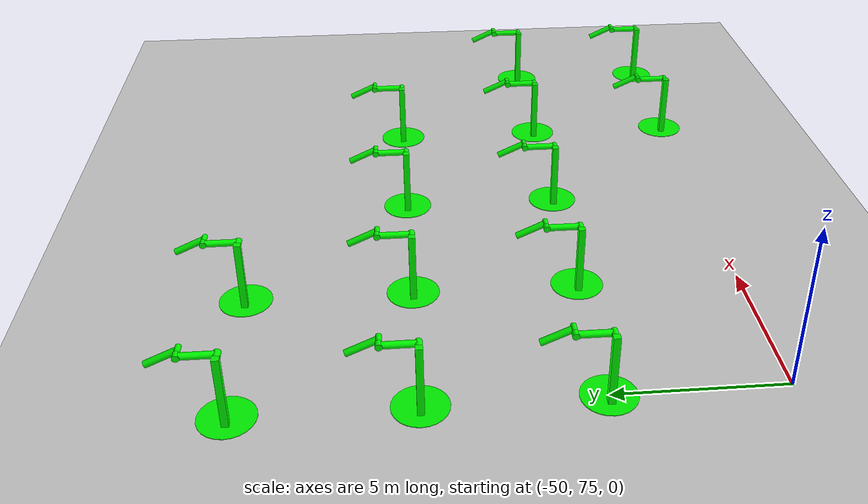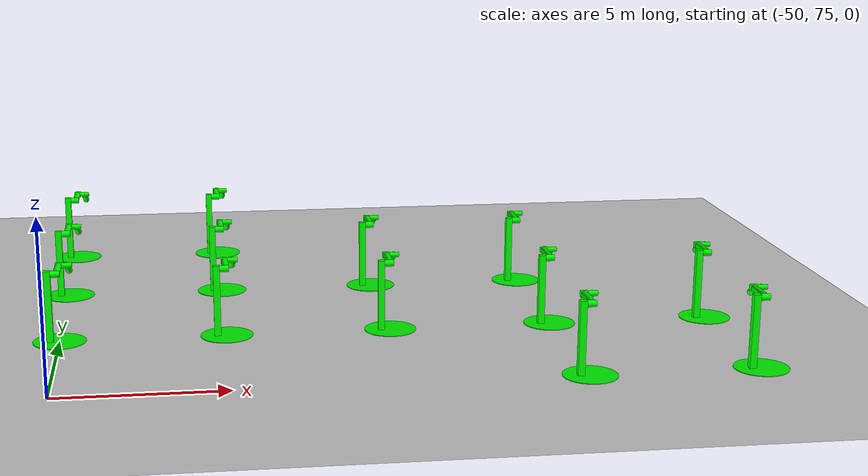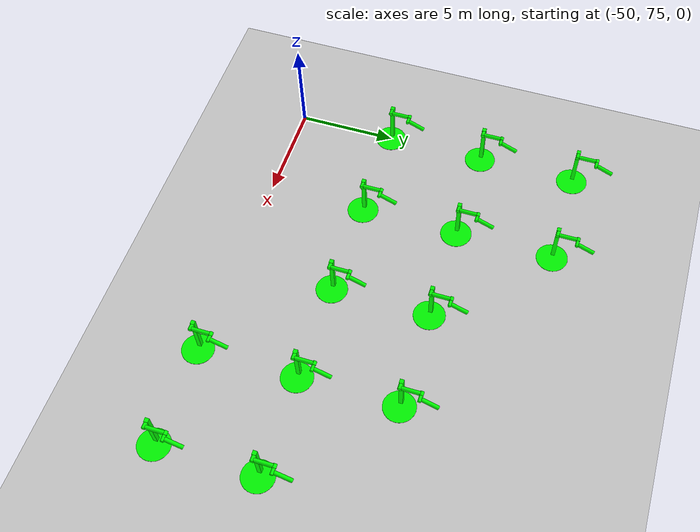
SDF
<sdf version="1.6">
 <world name="double_pendulums">
  <model name="ground_plane">
   <static>true</static>
   <link name="link">
    <collision name="collision">
     <geometry><plane><normal>0 0 1</normal><size>100 100</size></plane></geometry>
    </collision>
    <visual name="visual">
     <geometry><plane><normal>0 0 1</normal><size>100 100</size></plane></geometry>
     <material>
      <ambient>0.8 0.8 0.8 1</ambient>
      <diffuse>0.8 0.8 0.8 1</diffuse>
      <specular>0.8 0.8 0.8 1</specular>
     </material>
    </visual>
   </link>
  </model>
  <model name="dbl_pendulum_378">
   <pose>-35 75 0 0 0 0</pose>
   <link name="base">
    <inertial><mass>100</mass></inertial>
    <visual name="vis_plate_on_ground">
     <pose>0 0 0.01 0 0 0</pose>
     <geometry><cylinder><radius>0.8</radius><length>0.02</length></cylinder></geometry>
     <material><ambient>0 1 0 1</ambient><diffuse>0 1 0 1</diffuse><specular>0 1 0 1</specular></material>
    </visual>
    <visual name="vis_pole">
     <pose>-0.275 0 1.1 0 0 0</pose>
     <geometry><box><size>0.2 0.2 2.2</size></box></geometry>
     <material><ambient>0 1 0 1</ambient><diffuse>0 1 0 1</diffuse><specular>0 1 0 1</specular></material>
    </visual>
    <collision name="col_plate_on_ground">
     <pose>0 0 0.01 0 0 0</pose>
     <geometry><cylinder><radius>0.8</radius><length>0.02</length></cylinder></geometry>
    </collision>
    <collision name="col_pole">
     <pose>-0.275 0 1.1 0 0 0</pose>
     <geometry><box><size>0.2 0.2 2.2</size></box></geometry>
    </collision>
   </link>
   <link name="upper_link">
    <pose>0 0 2.1 -1.5708 0 0</pose>
    <inertial><pose>0 0 0.5 0 0 0</pose></inertial>
    <visual name="vis_upper_joint">
     <pose>-0.05 0 0 0 1.5708 0</pose>
     <geometry><cylinder><radius>0.1</radius><length>0.3</length></cylinder></geometry>
     <material><ambient>0 1 0 1</ambient><diffuse>0 1 0 1</diffuse><specular>0 1 0 1</specular></material>
    </visual>
    <visual name="vis_lower_joint">
     <pose>0 0 1.0 0 1.5708 0</pose>
     <geometry><cylinder><radius>0.1</radius><length>0.2</length></cylinder></geometry>
     <material><ambient>0 1 0 1</ambient><diffuse>0 1 0 1</diffuse><specular>0 1 0 1</specular></material>
    </visual>
    <visual name="vis_cylinder">
     <pose>0 0 0.5 0 0 0</pose>
     <geometry><cylinder><radius>0.1</radius><length>0.9</length></cylinder></geometry>
     <material><ambient>0 1 0 1</ambient><diffuse>0 1 0 1</diffuse><specular>0 1 0 1</specular></material>
    </visual>
    <collision name="col_upper_joint">
     <pose>-0.05 0 0 0 1.5708 0</pose>
     <geometry><cylinder><radius>0.1</radius><length>0.3</length></cylinder></geometry>
    </collision>
    <collision name="col_lower_joint">
     <pose>0 0 1.0 0 1.5708 0</pose>
     <geometry><cylinder><radius>0.1</radius><length>0.2</length></cylinder></geometry>
    </collision>
    <collision name="col_cylinder">
     <pose>0 0 0.5 0 0 0</pose>
     <geometry><cylinder><radius>0.1</radius><length>0.9</length></cylinder></geometry>
    </collision>
   </link>
   <link name="lower_link">
    <pose>0.25 1.0 2.1 -2 0 0</pose>
    <inertial><pose>0 0 0.5 0 0 0</pose></inertial>
    <visual name="vis_lower_joint">
     <pose>0 0 0 0 1.5708 0</pose>
     <geometry><cylinder><radius>0.08</radius><length>0.3</length></cylinder></geometry>
     <material><ambient>0 1 0 1</ambient><diffuse>0 1 0 1</diffuse><specular>0 1 0 1</specular></material>
    </visual>
    <visual name="vis_cylinder">
     <pose>0 0 0.5 0 0 0</pose>
     <geometry><cylinder><radius>0.1</radius><length>0.9</length></cylinder></geometry>
     <material><ambient>0 1 0 1</ambient><diffuse>0 1 0 1</diffuse><specular>0 1 0 1</specular></material>
    </visual>
    <collision name="col_lower_joint">
     <pose>0 0 0 0 1.5708 0</pose>
     <geometry><cylinder><radius>0.08</radius><length>0.3</length></cylinder></geometry>
    </collision>
    <collision name="col_cylinder">
     <pose>0 0 0.5 0 0 0</pose>
     <geometry><cylinder><radius>0.1</radius><length>0.9</length></cylinder></geometry>
    </collision>
   </link>
   <joint name="upper_joint" type="revolute">
    <parent>base</parent>
    <child>upper_link</child>
    <axis><xyz>1.0 0 0</xyz></axis>
   </joint>
   <joint name="lower_joint" type="revolute">
    <parent>upper_link</parent>
    <child>lower_link</child>
    <axis><xyz>1.0 0 0</xyz></axis>
   </joint>
  </model>
  <model name="dbl_pendulum_379">
   <pose>-30 75 0 0 0 0</pose>
   <link name="base">
    <inertial><mass>100</mass></inertial>
    <visual name="vis_plate_on_ground">
     <pose>0 0 0.01 0 0 0</pose>
     <geometry><cylinder><radius>0.8</radius><length>0.02</length></cylinder></geometry>
     <material><ambient>0 1 0 1</ambient><diffuse>0 1 0 1</diffuse><specular>0 1 0 1</specular></material>
    </visual>
    <visual name="vis_pole">
     <pose>-0.275 0 1.1 0 0 0</pose>
     <geometry><box><size>0.2 0.2 2.2</size></box></geometry>
     <material><ambient>0 1 0 1</ambient><diffuse>0 1 0 1</diffuse><specular>0 1 0 1</specular></material>
    </visual>
    <collision name="col_plate_on_ground">
     <pose>0 0 0.01 0 0 0</pose>
     <geometry><cylinder><radius>0.8</radius><length>0.02</length></cylinder></geometry>
    </collision>
    <collision name="col_pole">
     <pose>-0.275 0 1.1 0 0 0</pose>
     <geometry><box><size>0.2 0.2 2.2</size></box></geometry>
    </collision>
   </link>
   <link name="upper_link">
    <pose>0 0 2.1 -1.5708 0 0</pose>
    <inertial><pose>0 0 0.5 0 0 0</pose></inertial>
    <visual name="vis_upper_joint">
     <pose>-0.05 0 0 0 1.5708 0</pose>
     <geometry><cylinder><radius>0.1</radius><length>0.3</length></cylinder></geometry>
     <material><ambient>0 1 0 1</ambient><diffuse>0 1 0 1</diffuse><specular>0 1 0 1</specular></material>
    </visual>
    <visual name="vis_lower_joint">
     <pose>0 0 1.0 0 1.5708 0</pose>
     <geometry><cylinder><radius>0.1</radius><length>0.2</length></cylinder></geometry>
     <material><ambient>0 1 0 1</ambient><diffuse>0 1 0 1</diffuse><specular>0 1 0 1</specular></material>
    </visual>
    <visual name="vis_cylinder">
     <pose>0 0 0.5 0 0 0</pose>
     <geometry><cylinder><radius>0.1</radius><length>0.9</length></cylinder></geometry>
     <material><ambient>0 1 0 1</ambient><diffuse>0 1 0 1</diffuse><specular>0 1 0 1</specular></material>
    </visual>
    <collision name="col_upper_joint">
     <pose>-0.05 0 0 0 1.5708 0</pose>
     <geometry><cylinder><radius>0.1</radius><length>0.3</length></cylinder></geometry>
    </collision>
    <collision name="col_lower_joint">
     <pose>0 0 1.0 0 1.5708 0</pose>
     <geometry><cylinder><radius>0.1</radius><length>0.2</length></cylinder></geometry>
    </collision>
    <collision name="col_cylinder">
     <pose>0 0 0.5 0 0 0</pose>
     <geometry><cylinder><radius>0.1</radius><length>0.9</length></cylinder></geometry>
    </collision>
   </link>
   <link name="lower_link">
    <pose>0.25 1.0 2.1 -2 0 0</pose>
    <inertial><pose>0 0 0.5 0 0 0</pose></inertial>
    <visual name="vis_lower_joint">
     <pose>0 0 0 0 1.5708 0</pose>
     <geometry><cylinder><radius>0.08</radius><length>0.3</length></cylinder></geometry>
     <material><ambient>0 1 0 1</ambient><diffuse>0 1 0 1</diffuse><specular>0 1 0 1</specular></material>
    </visual>
    <visual name="vis_cylinder">
     <pose>0 0 0.5 0 0 0</pose>
     <geometry><cylinder><radius>0.1</radius><length>0.9</length></cylinder></geometry>
     <material><ambient>0 1 0 1</ambient><diffuse>0 1 0 1</diffuse><specular>0 1 0 1</specular></material>
    </visual>
    <collision name="col_lower_joint">
     <pose>0 0 0 0 1.5708 0</pose>
     <geometry><cylinder><radius>0.08</radius><length>0.3</length></cylinder></geometry>
    </collision>
    <collision name="col_cylinder">
     <pose>0 0 0.5 0 0 0</pose>
     <geometry><cylinder><radius>0.1</radius><length>0.9</length></cylinder></geometry>
    </collision>
   </link>
   <joint name="upper_joint" type="revolute">
    <parent>base</parent>
    <child>upper_link</child>
    <axis><xyz>1.0 0 0</xyz></axis>
   </joint>
   <joint name="lower_joint" type="revolute">
    <parent>upper_link</parent>
    <child>lower_link</child>
    <axis><xyz>1.0 0 0</xyz></axis>
   </joint>
  </model>
  <model name="dbl_pendulum_400">
   <pose>-50 80 0 0 0 0</pose>
   <link name="base">
    <inertial><mass>100</mass></inertial>
    <visual name="vis_plate_on_ground">
     <pose>0 0 0.01 0 0 0</pose>
     <geometry><cylinder><radius>0.8</radius><length>0.02</length></cylinder></geometry>
     <material><ambient>0 1 0 1</ambient><diffuse>0 1 0 1</diffuse><specular>0 1 0 1</specular></material>
    </visual>
    <visual name="vis_pole">
     <pose>-0.275 0 1.1 0 0 0</pose>
     <geometry><box><size>0.2 0.2 2.2</size></box></geometry>
     <material><ambient>0 1 0 1</ambient><diffuse>0 1 0 1</diffuse><specular>0 1 0 1</specular></material>
    </visual>
    <collision name="col_plate_on_ground">
     <pose>0 0 0.01 0 0 0</pose>
     <geometry><cylinder><radius>0.8</radius><length>0.02</length></cylinder></geometry>
    </collision>
    <collision name="col_pole">
     <pose>-0.275 0 1.1 0 0 0</pose>
     <geometry><box><size>0.2 0.2 2.2</size></box></geometry>
    </collision>
   </link>
   <link name="upper_link">
    <pose>0 0 2.1 -1.5708 0 0</pose>
    <inertial><pose>0 0 0.5 0 0 0</pose></inertial>
    <visual name="vis_upper_joint">
     <pose>-0.05 0 0 0 1.5708 0</pose>
     <geometry><cylinder><radius>0.1</radius><length>0.3</length></cylinder></geometry>
     <material><ambient>0 1 0 1</ambient><diffuse>0 1 0 1</diffuse><specular>0 1 0 1</specular></material>
    </visual>
    <visual name="vis_lower_joint">
     <pose>0 0 1.0 0 1.5708 0</pose>
     <geometry><cylinder><radius>0.1</radius><length>0.2</length></cylinder></geometry>
     <material><ambient>0 1 0 1</ambient><diffuse>0 1 0 1</diffuse><specular>0 1 0 1</specular></material>
    </visual>
    <visual name="vis_cylinder">
     <pose>0 0 0.5 0 0 0</pose>
     <geometry><cylinder><radius>0.1</radius><length>0.9</length></cylinder></geometry>
     <material><ambient>0 1 0 1</ambient><diffuse>0 1 0 1</diffuse><specular>0 1 0 1</specular></material>
    </visual>
    <collision name="col_upper_joint">
     <pose>-0.05 0 0 0 1.5708 0</pose>
     <geometry><cylinder><radius>0.1</radius><length>0.3</length></cylinder></geometry>
    </collision>
    <collision name="col_lower_joint">
     <pose>0 0 1.0 0 1.5708 0</pose>
     <geometry><cylinder><radius>0.1</radius><length>0.2</length></cylinder></geometry>
    </collision>
    <collision name="col_cylinder">
     <pose>0 0 0.5 0 0 0</pose>
     <geometry><cylinder><radius>0.1</radius><length>0.9</length></cylinder></geometry>
    </collision>
   </link>
   <link name="lower_link">
    <pose>0.25 1.0 2.1 -2 0 0</pose>
    <inertial><pose>0 0 0.5 0 0 0</pose></inertial>
    <visual name="vis_lower_joint">
     <pose>0 0 0 0 1.5708 0</pose>
     <geometry><cylinder><radius>0.08</radius><length>0.3</length></cylinder></geometry>
     <material><ambient>0 1 0 1</ambient><diffuse>0 1 0 1</diffuse><specular>0 1 0 1</specular></material>
    </visual>
    <visual name="vis_cylinder">
     <pose>0 0 0.5 0 0 0</pose>
     <geometry><cylinder><radius>0.1</radius><length>0.9</length></cylinder></geometry>
     <material><ambient>0 1 0 1</ambient><diffuse>0 1 0 1</diffuse><specular>0 1 0 1</specular></material>
    </visual>
    <collision name="col_lower_joint">
     <pose>0 0 0 0 1.5708 0</pose>
     <geometry><cylinder><radius>0.08</radius><length>0.3</length></cylinder></geometry>
    </collision>
    <collision name="col_cylinder">
     <pose>0 0 0.5 0 0 0</pose>
     <geometry><cylinder><radius>0.1</radius><length>0.9</length></cylinder></geometry>
    </collision>
   </link>
   <joint name="upper_joint" type="revolute">
    <parent>base</parent>
    <child>upper_link</child>
    <axis><xyz>1.0 0 0</xyz></axis>
   </joint>
   <joint name="lower_joint" type="revolute">
    <parent>upper_link</parent>
    <child>lower_link</child>
    <axis><xyz>1.0 0 0</xyz></axis>
   </joint>
  </model>
  <model name="dbl_pendulum_401">
   <pose>-45 80 0 0 0 0</pose>
   <link name="base">
    <inertial><mass>100</mass></inertial>
    <visual name="vis_plate_on_ground">
     <pose>0 0 0.01 0 0 0</pose>
     <geometry><cylinder><radius>0.8</radius><length>0.02</length></cylinder></geometry>
     <material><ambient>0 1 0 1</ambient><diffuse>0 1 0 1</diffuse><specular>0 1 0 1</specular></material>
    </visual>
    <visual name="vis_pole">
     <pose>-0.275 0 1.1 0 0 0</pose>
     <geometry><box><size>0.2 0.2 2.2</size></box></geometry>
     <material><ambient>0 1 0 1</ambient><diffuse>0 1 0 1</diffuse><specular>0 1 0 1</specular></material>
    </visual>
    <collision name="col_plate_on_ground">
     <pose>0 0 0.01 0 0 0</pose>
     <geometry><cylinder><radius>0.8</radius><length>0.02</length></cylinder></geometry>
    </collision>
    <collision name="col_pole">
     <pose>-0.275 0 1.1 0 0 0</pose>
     <geometry><box><size>0.2 0.2 2.2</size></box></geometry>
    </collision>
   </link>
   <link name="upper_link">
    <pose>0 0 2.1 -1.5708 0 0</pose>
    <inertial><pose>0 0 0.5 0 0 0</pose></inertial>
    <visual name="vis_upper_joint">
     <pose>-0.05 0 0 0 1.5708 0</pose>
     <geometry><cylinder><radius>0.1</radius><length>0.3</length></cylinder></geometry>
     <material><ambient>0 1 0 1</ambient><diffuse>0 1 0 1</diffuse><specular>0 1 0 1</specular></material>
    </visual>
    <visual name="vis_lower_joint">
     <pose>0 0 1.0 0 1.5708 0</pose>
     <geometry><cylinder><radius>0.1</radius><length>0.2</length></cylinder></geometry>
     <material><ambient>0 1 0 1</ambient><diffuse>0 1 0 1</diffuse><specular>0 1 0 1</specular></material>
    </visual>
    <visual name="vis_cylinder">
     <pose>0 0 0.5 0 0 0</pose>
     <geometry><cylinder><radius>0.1</radius><length>0.9</length></cylinder></geometry>
     <material><ambient>0 1 0 1</ambient><diffuse>0 1 0 1</diffuse><specular>0 1 0 1</specular></material>
    </visual>
    <collision name="col_upper_joint">
     <pose>-0.05 0 0 0 1.5708 0</pose>
     <geometry><cylinder><radius>0.1</radius><length>0.3</length></cylinder></geometry>
    </collision>
    <collision name="col_lower_joint">
     <pose>0 0 1.0 0 1.5708 0</pose>
     <geometry><cylinder><radius>0.1</radius><length>0.2</length></cylinder></geometry>
    </collision>
    <collision name="col_cylinder">
     <pose>0 0 0.5 0 0 0</pose>
     <geometry><cylinder><radius>0.1</radius><length>0.9</length></cylinder></geometry>
    </collision>
   </link>
   <link name="lower_link">
    <pose>0.25 1.0 2.1 -2 0 0</pose>
    <inertial><pose>0 0 0.5 0 0 0</pose></inertial>
    <visual name="vis_lower_joint">
     <pose>0 0 0 0 1.5708 0</pose>
     <geometry><cylinder><radius>0.08</radius><length>0.3</length></cylinder></geometry>
     <material><ambient>0 1 0 1</ambient><diffuse>0 1 0 1</diffuse><specular>0 1 0 1</specular></material>
    </visual>
    <visual name="vis_cylinder">
     <pose>0 0 0.5 0 0 0</pose>
     <geometry><cylinder><radius>0.1</radius><length>0.9</length></cylinder></geometry>
     <material><ambient>0 1 0 1</ambient><diffuse>0 1 0 1</diffuse><specular>0 1 0 1</specular></material>
    </visual>
    <collision name="col_lower_joint">
     <pose>0 0 0 0 1.5708 0</pose>
     <geometry><cylinder><radius>0.08</radius><length>0.3</length></cylinder></geometry>
    </collision>
    <collision name="col_cylinder">
     <pose>0 0 0.5 0 0 0</pose>
     <geometry><cylinder><radius>0.1</radius><length>0.9</length></cylinder></geometry>
    </collision>
   </link>
   <joint name="upper_joint" type="revolute">
    <parent>base</parent>
    <child>upper_link</child>
    <axis><xyz>1.0 0 0</xyz></axis>
   </joint>
   <joint name="lower_joint" type="revolute">
    <parent>upper_link</parent>
    <child>lower_link</child>
    <axis><xyz>1.0 0 0</xyz></axis>
   </joint>
  </model>
  <model name="dbl_pendulum_402">
   <pose>-40 80 0 0 0 0</pose>
   <link name="base">
    <inertial><mass>100</mass></inertial>
    <visual name="vis_plate_on_ground">
     <pose>0 0 0.01 0 0 0</pose>
     <geometry><cylinder><radius>0.8</radius><length>0.02</length></cylinder></geometry>
     <material><ambient>0 1 0 1</ambient><diffuse>0 1 0 1</diffuse><specular>0 1 0 1</specular></material>
    </visual>
    <visual name="vis_pole">
     <pose>-0.275 0 1.1 0 0 0</pose>
     <geometry><box><size>0.2 0.2 2.2</size></box></geometry>
     <material><ambient>0 1 0 1</ambient><diffuse>0 1 0 1</diffuse><specular>0 1 0 1</specular></material>
    </visual>
    <collision name="col_plate_on_ground">
     <pose>0 0 0.01 0 0 0</pose>
     <geometry><cylinder><radius>0.8</radius><length>0.02</length></cylinder></geometry>
    </collision>
    <collision name="col_pole">
     <pose>-0.275 0 1.1 0 0 0</pose>
     <geometry><box><size>0.2 0.2 2.2</size></box></geometry>
    </collision>
   </link>
   <link name="upper_link">
    <pose>0 0 2.1 -1.5708 0 0</pose>
    <inertial><pose>0 0 0.5 0 0 0</pose></inertial>
    <visual name="vis_upper_joint">
     <pose>-0.05 0 0 0 1.5708 0</pose>
     <geometry><cylinder><radius>0.1</radius><length>0.3</length></cylinder></geometry>
     <material><ambient>0 1 0 1</ambient><diffuse>0 1 0 1</diffuse><specular>0 1 0 1</specular></material>
    </visual>
    <visual name="vis_lower_joint">
     <pose>0 0 1.0 0 1.5708 0</pose>
     <geometry><cylinder><radius>0.1</radius><length>0.2</length></cylinder></geometry>
     <material><ambient>0 1 0 1</ambient><diffuse>0 1 0 1</diffuse><specular>0 1 0 1</specular></material>
    </visual>
    <visual name="vis_cylinder">
     <pose>0 0 0.5 0 0 0</pose>
     <geometry><cylinder><radius>0.1</radius><length>0.9</length></cylinder></geometry>
     <material><ambient>0 1 0 1</ambient><diffuse>0 1 0 1</diffuse><specular>0 1 0 1</specular></material>
    </visual>
    <collision name="col_upper_joint">
     <pose>-0.05 0 0 0 1.5708 0</pose>
     <geometry><cylinder><radius>0.1</radius><length>0.3</length></cylinder></geometry>
    </collision>
    <collision name="col_lower_joint">
     <pose>0 0 1.0 0 1.5708 0</pose>
     <geometry><cylinder><radius>0.1</radius><length>0.2</length></cylinder></geometry>
    </collision>
    <collision name="col_cylinder">
     <pose>0 0 0.5 0 0 0</pose>
     <geometry><cylinder><radius>0.1</radius><length>0.9</length></cylinder></geometry>
    </collision>
   </link>
   <link name="lower_link">
    <pose>0.25 1.0 2.1 -2 0 0</pose>
    <inertial><pose>0 0 0.5 0 0 0</pose></inertial>
    <visual name="vis_lower_joint">
     <pose>0 0 0 0 1.5708 0</pose>
     <geometry><cylinder><radius>0.08</radius><length>0.3</length></cylinder></geometry>
     <material><ambient>0 1 0 1</ambient><diffuse>0 1 0 1</diffuse><specular>0 1 0 1</specular></material>
    </visual>
    <visual name="vis_cylinder">
     <pose>0 0 0.5 0 0 0</pose>
     <geometry><cylinder><radius>0.1</radius><length>0.9</length></cylinder></geometry>
     <material><ambient>0 1 0 1</ambient><diffuse>0 1 0 1</diffuse><specular>0 1 0 1</specular></material>
    </visual>
    <collision name="col_lower_joint">
     <pose>0 0 0 0 1.5708 0</pose>
     <geometry><cylinder><radius>0.08</radius><length>0.3</length></cylinder></geometry>
    </collision>
    <collision name="col_cylinder">
     <pose>0 0 0.5 0 0 0</pose>
     <geometry><cylinder><radius>0.1</radius><length>0.9</length></cylinder></geometry>
    </collision>
   </link>
   <joint name="upper_joint" type="revolute">
    <parent>base</parent>
    <child>upper_link</child>
    <axis><xyz>1.0 0 0</xyz></axis>
   </joint>
   <joint name="lower_joint" type="revolute">
    <parent>upper_link</parent>
    <child>lower_link</child>
    <axis><xyz>1.0 0 0</xyz></axis>
   </joint>
  </model>
  <model name="dbl_pendulum_403">
   <pose>-35 80 0 0 0 0</pose>
   <link name="base">
    <inertial><mass>100</mass></inertial>
    <visual name="vis_plate_on_ground">
     <pose>0 0 0.01 0 0 0</pose>
     <geometry><cylinder><radius>0.8</radius><length>0.02</length></cylinder></geometry>
     <material><ambient>0 1 0 1</ambient><diffuse>0 1 0 1</diffuse><specular>0 1 0 1</specular></material>
    </visual>
    <visual name="vis_pole">
     <pose>-0.275 0 1.1 0 0 0</pose>
     <geometry><box><size>0.2 0.2 2.2</size></box></geometry>
     <material><ambient>0 1 0 1</ambient><diffuse>0 1 0 1</diffuse><specular>0 1 0 1</specular></material>
    </visual>
    <collision name="col_plate_on_ground">
     <pose>0 0 0.01 0 0 0</pose>
     <geometry><cylinder><radius>0.8</radius><length>0.02</length></cylinder></geometry>
    </collision>
    <collision name="col_pole">
     <pose>-0.275 0 1.1 0 0 0</pose>
     <geometry><box><size>0.2 0.2 2.2</size></box></geometry>
    </collision>
   </link>
   <link name="upper_link">
    <pose>0 0 2.1 -1.5708 0 0</pose>
    <inertial><pose>0 0 0.5 0 0 0</pose></inertial>
    <visual name="vis_upper_joint">
     <pose>-0.05 0 0 0 1.5708 0</pose>
     <geometry><cylinder><radius>0.1</radius><length>0.3</length></cylinder></geometry>
     <material><ambient>0 1 0 1</ambient><diffuse>0 1 0 1</diffuse><specular>0 1 0 1</specular></material>
    </visual>
    <visual name="vis_lower_joint">
     <pose>0 0 1.0 0 1.5708 0</pose>
     <geometry><cylinder><radius>0.1</radius><length>0.2</length></cylinder></geometry>
     <material><ambient>0 1 0 1</ambient><diffuse>0 1 0 1</diffuse><specular>0 1 0 1</specular></material>
    </visual>
    <visual name="vis_cylinder">
     <pose>0 0 0.5 0 0 0</pose>
     <geometry><cylinder><radius>0.1</radius><length>0.9</length></cylinder></geometry>
     <material><ambient>0 1 0 1</ambient><diffuse>0 1 0 1</diffuse><specular>0 1 0 1</specular></material>
    </visual>
    <collision name="col_upper_joint">
     <pose>-0.05 0 0 0 1.5708 0</pose>
     <geometry><cylinder><radius>0.1</radius><length>0.3</length></cylinder></geometry>
    </collision>
    <collision name="col_lower_joint">
     <pose>0 0 1.0 0 1.5708 0</pose>
     <geometry><cylinder><radius>0.1</radius><length>0.2</length></cylinder></geometry>
    </collision>
    <collision name="col_cylinder">
     <pose>0 0 0.5 0 0 0</pose>
     <geometry><cylinder><radius>0.1</radius><length>0.9</length></cylinder></geometry>
    </collision>
   </link>
   <link name="lower_link">
    <pose>0.25 1.0 2.1 -2 0 0</pose>
    <inertial><pose>0 0 0.5 0 0 0</pose></inertial>
    <visual name="vis_lower_joint">
     <pose>0 0 0 0 1.5708 0</pose>
     <geometry><cylinder><radius>0.08</radius><length>0.3</length></cylinder></geometry>
     <material><ambient>0 1 0 1</ambient><diffuse>0 1 0 1</diffuse><specular>0 1 0 1</specular></material>
    </visual>
    <visual name="vis_cylinder">
     <pose>0 0 0.5 0 0 0</pose>
     <geometry><cylinder><radius>0.1</radius><length>0.9</length></cylinder></geometry>
     <material><ambient>0 1 0 1</ambient><diffuse>0 1 0 1</diffuse><specular>0 1 0 1</specular></material>
    </visual>
    <collision name="col_lower_joint">
     <pose>0 0 0 0 1.5708 0</pose>
     <geometry><cylinder><radius>0.08</radius><length>0.3</length></cylinder></geometry>
    </collision>
    <collision name="col_cylinder">
     <pose>0 0 0.5 0 0 0</pose>
     <geometry><cylinder><radius>0.1</radius><length>0.9</length></cylinder></geometry>
    </collision>
   </link>
   <joint name="upper_joint" type="revolute">
    <parent>base</parent>
    <child>upper_link</child>
    <axis><xyz>1.0 0 0</xyz></axis>
   </joint>
   <joint name="lower_joint" type="revolute">
    <parent>upper_link</parent>
    <child>lower_link</child>
    <axis><xyz>1.0 0 0</xyz></axis>
   </joint>
  </model>
  <model name="dbl_pendulum_404">
   <pose>-30 80 0 0 0 0</pose>
   <link name="base">
    <inertial><mass>100</mass></inertial>
    <visual name="vis_plate_on_ground">
     <pose>0 0 0.01 0 0 0</pose>
     <geometry><cylinder><radius>0.8</radius><length>0.02</length></cylinder></geometry>
     <material><ambient>0 1 0 1</ambient><diffuse>0 1 0 1</diffuse><specular>0 1 0 1</specular></material>
    </visual>
    <visual name="vis_pole">
     <pose>-0.275 0 1.1 0 0 0</pose>
     <geometry><box><size>0.2 0.2 2.2</size></box></geometry>
     <material><ambient>0 1 0 1</ambient><diffuse>0 1 0 1</diffuse><specular>0 1 0 1</specular></material>
    </visual>
    <collision name="col_plate_on_ground">
     <pose>0 0 0.01 0 0 0</pose>
     <geometry><cylinder><radius>0.8</radius><length>0.02</length></cylinder></geometry>
    </collision>
    <collision name="col_pole">
     <pose>-0.275 0 1.1 0 0 0</pose>
     <geometry><box><size>0.2 0.2 2.2</size></box></geometry>
    </collision>
   </link>
   <link name="upper_link">
    <pose>0 0 2.1 -1.5708 0 0</pose>
    <inertial><pose>0 0 0.5 0 0 0</pose></inertial>
    <visual name="vis_upper_joint">
     <pose>-0.05 0 0 0 1.5708 0</pose>
     <geometry><cylinder><radius>0.1</radius><length>0.3</length></cylinder></geometry>
     <material><ambient>0 1 0 1</ambient><diffuse>0 1 0 1</diffuse><specular>0 1 0 1</specular></material>
    </visual>
    <visual name="vis_lower_joint">
     <pose>0 0 1.0 0 1.5708 0</pose>
     <geometry><cylinder><radius>0.1</radius><length>0.2</length></cylinder></geometry>
     <material><ambient>0 1 0 1</ambient><diffuse>0 1 0 1</diffuse><specular>0 1 0 1</specular></material>
    </visual>
    <visual name="vis_cylinder">
     <pose>0 0 0.5 0 0 0</pose>
     <geometry><cylinder><radius>0.1</radius><length>0.9</length></cylinder></geometry>
     <material><ambient>0 1 0 1</ambient><diffuse>0 1 0 1</diffuse><specular>0 1 0 1</specular></material>
    </visual>
    <collision name="col_upper_joint">
     <pose>-0.05 0 0 0 1.5708 0</pose>
     <geometry><cylinder><radius>0.1</radius><length>0.3</length></cylinder></geometry>
    </collision>
    <collision name="col_lower_joint">
     <pose>0 0 1.0 0 1.5708 0</pose>
     <geometry><cylinder><radius>0.1</radius><length>0.2</length></cylinder></geometry>
    </collision>
    <collision name="col_cylinder">
     <pose>0 0 0.5 0 0 0</pose>
     <geometry><cylinder><radius>0.1</radius><length>0.9</length></cylinder></geometry>
    </collision>
   </link>
   <link name="lower_link">
    <pose>0.25 1.0 2.1 -2 0 0</pose>
    <inertial><pose>0 0 0.5 0 0 0</pose></inertial>
    <visual name="vis_lower_joint">
     <pose>0 0 0 0 1.5708 0</pose>
     <geometry><cylinder><radius>0.08</radius><length>0.3</length></cylinder></geometry>
     <material><ambient>0 1 0 1</ambient><diffuse>0 1 0 1</diffuse><specular>0 1 0 1</specular></material>
    </visual>
    <visual name="vis_cylinder">
     <pose>0 0 0.5 0 0 0</pose>
     <geometry><cylinder><radius>0.1</radius><length>0.9</length></cylinder></geometry>
     <material><ambient>0 1 0 1</ambient><diffuse>0 1 0 1</diffuse><specular>0 1 0 1</specular></material>
    </visual>
    <collision name="col_lower_joint">
     <pose>0 0 0 0 1.5708 0</pose>
     <geometry><cylinder><radius>0.08</radius><length>0.3</length></cylinder></geometry>
    </collision>
    <collision name="col_cylinder">
     <pose>0 0 0.5 0 0 0</pose>
     <geometry><cylinder><radius>0.1</radius><length>0.9</length></cylinder></geometry>
    </collision>
   </link>
   <joint name="upper_joint" type="revolute">
    <parent>base</parent>
    <child>upper_link</child>
    <axis><xyz>1.0 0 0</xyz></axis>
   </joint>
   <joint name="lower_joint" type="revolute">
    <parent>upper_link</parent>
    <child>lower_link</child>
    <axis><xyz>1.0 0 0</xyz></axis>
   </joint>
  </model>
  <model name="dbl_pendulum_425">
   <pose>-50 85 0 0 0 0</pose>
   <link name="base">
    <inertial><mass>100</mass></inertial>
    <visual name="vis_plate_on_ground">
     <pose>0 0 0.01 0 0 0</pose>
     <geometry><cylinder><radius>0.8</radius><length>0.02</length></cylinder></geometry>
     <material><ambient>0 1 0 1</ambient><diffuse>0 1 0 1</diffuse><specular>0 1 0 1</specular></material>
    </visual>
    <visual name="vis_pole">
     <pose>-0.275 0 1.1 0 0 0</pose>
     <geometry><box><size>0.2 0.2 2.2</size></box></geometry>
     <material><ambient>0 1 0 1</ambient><diffuse>0 1 0 1</diffuse><specular>0 1 0 1</specular></material>
    </visual>
    <collision name="col_plate_on_ground">
     <pose>0 0 0.01 0 0 0</pose>
     <geometry><cylinder><radius>0.8</radius><length>0.02</length></cylinder></geometry>
    </collision>
    <collision name="col_pole">
     <pose>-0.275 0 1.1 0 0 0</pose>
     <geometry><box><size>0.2 0.2 2.2</size></box></geometry>
    </collision>
   </link>
   <link name="upper_link">
    <pose>0 0 2.1 -1.5708 0 0</pose>
    <inertial><pose>0 0 0.5 0 0 0</pose></inertial>
    <visual name="vis_upper_joint">
     <pose>-0.05 0 0 0 1.5708 0</pose>
     <geometry><cylinder><radius>0.1</radius><length>0.3</length></cylinder></geometry>
     <material><ambient>0 1 0 1</ambient><diffuse>0 1 0 1</diffuse><specular>0 1 0 1</specular></material>
    </visual>
    <visual name="vis_lower_joint">
     <pose>0 0 1.0 0 1.5708 0</pose>
     <geometry><cylinder><radius>0.1</radius><length>0.2</length></cylinder></geometry>
     <material><ambient>0 1 0 1</ambient><diffuse>0 1 0 1</diffuse><specular>0 1 0 1</specular></material>
    </visual>
    <visual name="vis_cylinder">
     <pose>0 0 0.5 0 0 0</pose>
     <geometry><cylinder><radius>0.1</radius><length>0.9</length></cylinder></geometry>
     <material><ambient>0 1 0 1</ambient><diffuse>0 1 0 1</diffuse><specular>0 1 0 1</specular></material>
    </visual>
    <collision name="col_upper_joint">
     <pose>-0.05 0 0 0 1.5708 0</pose>
     <geometry><cylinder><radius>0.1</radius><length>0.3</length></cylinder></geometry>
    </collision>
    <collision name="col_lower_joint">
     <pose>0 0 1.0 0 1.5708 0</pose>
     <geometry><cylinder><radius>0.1</radius><length>0.2</length></cylinder></geometry>
    </collision>
    <collision name="col_cylinder">
     <pose>0 0 0.5 0 0 0</pose>
     <geometry><cylinder><radius>0.1</radius><length>0.9</length></cylinder></geometry>
    </collision>
   </link>
   <link name="lower_link">
    <pose>0.25 1.0 2.1 -2 0 0</pose>
    <inertial><pose>0 0 0.5 0 0 0</pose></inertial>
    <visual name="vis_lower_joint">
     <pose>0 0 0 0 1.5708 0</pose>
     <geometry><cylinder><radius>0.08</radius><length>0.3</length></cylinder></geometry>
     <material><ambient>0 1 0 1</ambient><diffuse>0 1 0 1</diffuse><specular>0 1 0 1</specular></material>
    </visual>
    <visual name="vis_cylinder">
     <pose>0 0 0.5 0 0 0</pose>
     <geometry><cylinder><radius>0.1</radius><length>0.9</length></cylinder></geometry>
     <material><ambient>0 1 0 1</ambient><diffuse>0 1 0 1</diffuse><specular>0 1 0 1</specular></material>
    </visual>
    <collision name="col_lower_joint">
     <pose>0 0 0 0 1.5708 0</pose>
     <geometry><cylinder><radius>0.08</radius><length>0.3</length></cylinder></geometry>
    </collision>
    <collision name="col_cylinder">
     <pose>0 0 0.5 0 0 0</pose>
     <geometry><cylinder><radius>0.1</radius><length>0.9</length></cylinder></geometry>
    </collision>
   </link>
   <joint name="upper_joint" type="revolute">
    <parent>base</parent>
    <child>upper_link</child>
    <axis><xyz>1.0 0 0</xyz></axis>
   </joint>
   <joint name="lower_joint" type="revolute">
    <parent>upper_link</parent>
    <child>lower_link</child>
    <axis><xyz>1.0 0 0</xyz></axis>
   </joint>
  </model>
  <model name="dbl_pendulum_426">
   <pose>-45 85 0 0 0 0</pose>
   <link name="base">
    <inertial><mass>100</mass></inertial>
    <visual name="vis_plate_on_ground">
     <pose>0 0 0.01 0 0 0</pose>
     <geometry><cylinder><radius>0.8</radius><length>0.02</length></cylinder></geometry>
     <material><ambient>0 1 0 1</ambient><diffuse>0 1 0 1</diffuse><specular>0 1 0 1</specular></material>
    </visual>
    <visual name="vis_pole">
     <pose>-0.275 0 1.1 0 0 0</pose>
     <geometry><box><size>0.2 0.2 2.2</size></box></geometry>
     <material><ambient>0 1 0 1</ambient><diffuse>0 1 0 1</diffuse><specular>0 1 0 1</specular></material>
    </visual>
    <collision name="col_plate_on_ground">
     <pose>0 0 0.01 0 0 0</pose>
     <geometry><cylinder><radius>0.8</radius><length>0.02</length></cylinder></geometry>
    </collision>
    <collision name="col_pole">
     <pose>-0.275 0 1.1 0 0 0</pose>
     <geometry><box><size>0.2 0.2 2.2</size></box></geometry>
    </collision>
   </link>
   <link name="upper_link">
    <pose>0 0 2.1 -1.5708 0 0</pose>
    <inertial><pose>0 0 0.5 0 0 0</pose></inertial>
    <visual name="vis_upper_joint">
     <pose>-0.05 0 0 0 1.5708 0</pose>
     <geometry><cylinder><radius>0.1</radius><length>0.3</length></cylinder></geometry>
     <material><ambient>0 1 0 1</ambient><diffuse>0 1 0 1</diffuse><specular>0 1 0 1</specular></material>
    </visual>
    <visual name="vis_lower_joint">
     <pose>0 0 1.0 0 1.5708 0</pose>
     <geometry><cylinder><radius>0.1</radius><length>0.2</length></cylinder></geometry>
     <material><ambient>0 1 0 1</ambient><diffuse>0 1 0 1</diffuse><specular>0 1 0 1</specular></material>
    </visual>
    <visual name="vis_cylinder">
     <pose>0 0 0.5 0 0 0</pose>
     <geometry><cylinder><radius>0.1</radius><length>0.9</length></cylinder></geometry>
     <material><ambient>0 1 0 1</ambient><diffuse>0 1 0 1</diffuse><specular>0 1 0 1</specular></material>
    </visual>
    <collision name="col_upper_joint">
     <pose>-0.05 0 0 0 1.5708 0</pose>
     <geometry><cylinder><radius>0.1</radius><length>0.3</length></cylinder></geometry>
    </collision>
    <collision name="col_lower_joint">
     <pose>0 0 1.0 0 1.5708 0</pose>
     <geometry><cylinder><radius>0.1</radius><length>0.2</length></cylinder></geometry>
    </collision>
    <collision name="col_cylinder">
     <pose>0 0 0.5 0 0 0</pose>
     <geometry><cylinder><radius>0.1</radius><length>0.9</length></cylinder></geometry>
    </collision>
   </link>
   <link name="lower_link">
    <pose>0.25 1.0 2.1 -2 0 0</pose>
    <inertial><pose>0 0 0.5 0 0 0</pose></inertial>
    <visual name="vis_lower_joint">
     <pose>0 0 0 0 1.5708 0</pose>
     <geometry><cylinder><radius>0.08</radius><length>0.3</length></cylinder></geometry>
     <material><ambient>0 1 0 1</ambient><diffuse>0 1 0 1</diffuse><specular>0 1 0 1</specular></material>
    </visual>
    <visual name="vis_cylinder">
     <pose>0 0 0.5 0 0 0</pose>
     <geometry><cylinder><radius>0.1</radius><length>0.9</length></cylinder></geometry>
     <material><ambient>0 1 0 1</ambient><diffuse>0 1 0 1</diffuse><specular>0 1 0 1</specular></material>
    </visual>
    <collision name="col_lower_joint">
     <pose>0 0 0 0 1.5708 0</pose>
     <geometry><cylinder><radius>0.08</radius><length>0.3</length></cylinder></geometry>
    </collision>
    <collision name="col_cylinder">
     <pose>0 0 0.5 0 0 0</pose>
     <geometry><cylinder><radius>0.1</radius><length>0.9</length></cylinder></geometry>
    </collision>
   </link>
   <joint name="upper_joint" type="revolute">
    <parent>base</parent>
    <child>upper_link</child>
    <axis><xyz>1.0 0 0</xyz></axis>
   </joint>
   <joint name="lower_joint" type="revolute">
    <parent>upper_link</parent>
    <child>lower_link</child>
    <axis><xyz>1.0 0 0</xyz></axis>
   </joint>
  </model>
  <model name="dbl_pendulum_427">
   <pose>-40 85 0 0 0 0</pose>
   <link name="base">
    <inertial><mass>100</mass></inertial>
    <visual name="vis_plate_on_ground">
     <pose>0 0 0.01 0 0 0</pose>
     <geometry><cylinder><radius>0.8</radius><length>0.02</length></cylinder></geometry>
     <material><ambient>0 1 0 1</ambient><diffuse>0 1 0 1</diffuse><specular>0 1 0 1</specular></material>
    </visual>
    <visual name="vis_pole">
     <pose>-0.275 0 1.1 0 0 0</pose>
     <geometry><box><size>0.2 0.2 2.2</size></box></geometry>
     <material><ambient>0 1 0 1</ambient><diffuse>0 1 0 1</diffuse><specular>0 1 0 1</specular></material>
    </visual>
    <collision name="col_plate_on_ground">
     <pose>0 0 0.01 0 0 0</pose>
     <geometry><cylinder><radius>0.8</radius><length>0.02</length></cylinder></geometry>
    </collision>
    <collision name="col_pole">
     <pose>-0.275 0 1.1 0 0 0</pose>
     <geometry><box><size>0.2 0.2 2.2</size></box></geometry>
    </collision>
   </link>
   <link name="upper_link">
    <pose>0 0 2.1 -1.5708 0 0</pose>
    <inertial><pose>0 0 0.5 0 0 0</pose></inertial>
    <visual name="vis_upper_joint">
     <pose>-0.05 0 0 0 1.5708 0</pose>
     <geometry><cylinder><radius>0.1</radius><length>0.3</length></cylinder></geometry>
     <material><ambient>0 1 0 1</ambient><diffuse>0 1 0 1</diffuse><specular>0 1 0 1</specular></material>
    </visual>
    <visual name="vis_lower_joint">
     <pose>0 0 1.0 0 1.5708 0</pose>
     <geometry><cylinder><radius>0.1</radius><length>0.2</length></cylinder></geometry>
     <material><ambient>0 1 0 1</ambient><diffuse>0 1 0 1</diffuse><specular>0 1 0 1</specular></material>
    </visual>
    <visual name="vis_cylinder">
     <pose>0 0 0.5 0 0 0</pose>
     <geometry><cylinder><radius>0.1</radius><length>0.9</length></cylinder></geometry>
     <material><ambient>0 1 0 1</ambient><diffuse>0 1 0 1</diffuse><specular>0 1 0 1</specular></material>
    </visual>
    <collision name="col_upper_joint">
     <pose>-0.05 0 0 0 1.5708 0</pose>
     <geometry><cylinder><radius>0.1</radius><length>0.3</length></cylinder></geometry>
    </collision>
    <collision name="col_lower_joint">
     <pose>0 0 1.0 0 1.5708 0</pose>
     <geometry><cylinder><radius>0.1</radius><length>0.2</length></cylinder></geometry>
    </collision>
    <collision name="col_cylinder">
     <pose>0 0 0.5 0 0 0</pose>
     <geometry><cylinder><radius>0.1</radius><length>0.9</length></cylinder></geometry>
    </collision>
   </link>
   <link name="lower_link">
    <pose>0.25 1.0 2.1 -2 0 0</pose>
    <inertial><pose>0 0 0.5 0 0 0</pose></inertial>
    <visual name="vis_lower_joint">
     <pose>0 0 0 0 1.5708 0</pose>
     <geometry><cylinder><radius>0.08</radius><length>0.3</length></cylinder></geometry>
     <material><ambient>0 1 0 1</ambient><diffuse>0 1 0 1</diffuse><specular>0 1 0 1</specular></material>
    </visual>
    <visual name="vis_cylinder">
     <pose>0 0 0.5 0 0 0</pose>
     <geometry><cylinder><radius>0.1</radius><length>0.9</length></cylinder></geometry>
     <material><ambient>0 1 0 1</ambient><diffuse>0 1 0 1</diffuse><specular>0 1 0 1</specular></material>
    </visual>
    <collision name="col_lower_joint">
     <pose>0 0 0 0 1.5708 0</pose>
     <geometry><cylinder><radius>0.08</radius><length>0.3</length></cylinder></geometry>
    </collision>
    <collision name="col_cylinder">
     <pose>0 0 0.5 0 0 0</pose>
     <geometry><cylinder><radius>0.1</radius><length>0.9</length></cylinder></geometry>
    </collision>
   </link>
   <joint name="upper_joint" type="revolute">
    <parent>base</parent>
    <child>upper_link</child>
    <axis><xyz>1.0 0 0</xyz></axis>
   </joint>
   <joint name="lower_joint" type="revolute">
    <parent>upper_link</parent>
    <child>lower_link</child>
    <axis><xyz>1.0 0 0</xyz></axis>
   </joint>
  </model>
  <model name="dbl_pendulum_428">
   <pose>-35 85 0 0 0 0</pose>
   <link name="base">
    <inertial><mass>100</mass></inertial>
    <visual name="vis_plate_on_ground">
     <pose>0 0 0.01 0 0 0</pose>
     <geometry><cylinder><radius>0.8</radius><length>0.02</length></cylinder></geometry>
     <material><ambient>0 1 0 1</ambient><diffuse>0 1 0 1</diffuse><specular>0 1 0 1</specular></material>
    </visual>
    <visual name="vis_pole">
     <pose>-0.275 0 1.1 0 0 0</pose>
     <geometry><box><size>0.2 0.2 2.2</size></box></geometry>
     <material><ambient>0 1 0 1</ambient><diffuse>0 1 0 1</diffuse><specular>0 1 0 1</specular></material>
    </visual>
    <collision name="col_plate_on_ground">
     <pose>0 0 0.01 0 0 0</pose>
     <geometry><cylinder><radius>0.8</radius><length>0.02</length></cylinder></geometry>
    </collision>
    <collision name="col_pole">
     <pose>-0.275 0 1.1 0 0 0</pose>
     <geometry><box><size>0.2 0.2 2.2</size></box></geometry>
    </collision>
   </link>
   <link name="upper_link">
    <pose>0 0 2.1 -1.5708 0 0</pose>
    <inertial><pose>0 0 0.5 0 0 0</pose></inertial>
    <visual name="vis_upper_joint">
     <pose>-0.05 0 0 0 1.5708 0</pose>
     <geometry><cylinder><radius>0.1</radius><length>0.3</length></cylinder></geometry>
     <material><ambient>0 1 0 1</ambient><diffuse>0 1 0 1</diffuse><specular>0 1 0 1</specular></material>
    </visual>
    <visual name="vis_lower_joint">
     <pose>0 0 1.0 0 1.5708 0</pose>
     <geometry><cylinder><radius>0.1</radius><length>0.2</length></cylinder></geometry>
     <material><ambient>0 1 0 1</ambient><diffuse>0 1 0 1</diffuse><specular>0 1 0 1</specular></material>
    </visual>
    <visual name="vis_cylinder">
     <pose>0 0 0.5 0 0 0</pose>
     <geometry><cylinder><radius>0.1</radius><length>0.9</length></cylinder></geometry>
     <material><ambient>0 1 0 1</ambient><diffuse>0 1 0 1</diffuse><specular>0 1 0 1</specular></material>
    </visual>
    <collision name="col_upper_joint">
     <pose>-0.05 0 0 0 1.5708 0</pose>
     <geometry><cylinder><radius>0.1</radius><length>0.3</length></cylinder></geometry>
    </collision>
    <collision name="col_lower_joint">
     <pose>0 0 1.0 0 1.5708 0</pose>
     <geometry><cylinder><radius>0.1</radius><length>0.2</length></cylinder></geometry>
    </collision>
    <collision name="col_cylinder">
     <pose>0 0 0.5 0 0 0</pose>
     <geometry><cylinder><radius>0.1</radius><length>0.9</length></cylinder></geometry>
    </collision>
   </link>
   <link name="lower_link">
    <pose>0.25 1.0 2.1 -2 0 0</pose>
    <inertial><pose>0 0 0.5 0 0 0</pose></inertial>
    <visual name="vis_lower_joint">
     <pose>0 0 0 0 1.5708 0</pose>
     <geometry><cylinder><radius>0.08</radius><length>0.3</length></cylinder></geometry>
     <material><ambient>0 1 0 1</ambient><diffuse>0 1 0 1</diffuse><specular>0 1 0 1</specular></material>
    </visual>
    <visual name="vis_cylinder">
     <pose>0 0 0.5 0 0 0</pose>
     <geometry><cylinder><radius>0.1</radius><length>0.9</length></cylinder></geometry>
     <material><ambient>0 1 0 1</ambient><diffuse>0 1 0 1</diffuse><specular>0 1 0 1</specular></material>
    </visual>
    <collision name="col_lower_joint">
     <pose>0 0 0 0 1.5708 0</pose>
     <geometry><cylinder><radius>0.08</radius><length>0.3</length></cylinder></geometry>
    </collision>
    <collision name="col_cylinder">
     <pose>0 0 0.5 0 0 0</pose>
     <geometry><cylinder><radius>0.1</radius><length>0.9</length></cylinder></geometry>
    </collision>
   </link>
   <joint name="upper_joint" type="revolute">
    <parent>base</parent>
    <child>upper_link</child>
    <axis><xyz>1.0 0 0</xyz></axis>
   </joint>
   <joint name="lower_joint" type="revolute">
    <parent>upper_link</parent>
    <child>lower_link</child>
    <axis><xyz>1.0 0 0</xyz></axis>
   </joint>
  </model>
  <model name="dbl_pendulum_450">
   <pose>-50 90 0 0 0 0</pose>
   <link name="base">
    <inertial><mass>100</mass></inertial>
    <visual name="vis_plate_on_ground">
     <pose>0 0 0.01 0 0 0</pose>
     <geometry><cylinder><radius>0.8</radius><length>0.02</length></cylinder></geometry>
     <material><ambient>0 1 0 1</ambient><diffuse>0 1 0 1</diffuse><specular>0 1 0 1</specular></material>
    </visual>
    <visual name="vis_pole">
     <pose>-0.275 0 1.1 0 0 0</pose>
     <geometry><box><size>0.2 0.2 2.2</size></box></geometry>
     <material><ambient>0 1 0 1</ambient><diffuse>0 1 0 1</diffuse><specular>0 1 0 1</specular></material>
    </visual>
    <collision name="col_plate_on_ground">
     <pose>0 0 0.01 0 0 0</pose>
     <geometry><cylinder><radius>0.8</radius><length>0.02</length></cylinder></geometry>
    </collision>
    <collision name="col_pole">
     <pose>-0.275 0 1.1 0 0 0</pose>
     <geometry><box><size>0.2 0.2 2.2</size></box></geometry>
    </collision>
   </link>
   <link name="upper_link">
    <pose>0 0 2.1 -1.5708 0 0</pose>
    <inertial><pose>0 0 0.5 0 0 0</pose></inertial>
    <visual name="vis_upper_joint">
     <pose>-0.05 0 0 0 1.5708 0</pose>
     <geometry><cylinder><radius>0.1</radius><length>0.3</length></cylinder></geometry>
     <material><ambient>0 1 0 1</ambient><diffuse>0 1 0 1</diffuse><specular>0 1 0 1</specular></material>
    </visual>
    <visual name="vis_lower_joint">
     <pose>0 0 1.0 0 1.5708 0</pose>
     <geometry><cylinder><radius>0.1</radius><length>0.2</length></cylinder></geometry>
     <material><ambient>0 1 0 1</ambient><diffuse>0 1 0 1</diffuse><specular>0 1 0 1</specular></material>
    </visual>
    <visual name="vis_cylinder">
     <pose>0 0 0.5 0 0 0</pose>
     <geometry><cylinder><radius>0.1</radius><length>0.9</length></cylinder></geometry>
     <material><ambient>0 1 0 1</ambient><diffuse>0 1 0 1</diffuse><specular>0 1 0 1</specular></material>
    </visual>
    <collision name="col_upper_joint">
     <pose>-0.05 0 0 0 1.5708 0</pose>
     <geometry><cylinder><radius>0.1</radius><length>0.3</length></cylinder></geometry>
    </collision>
    <collision name="col_lower_joint">
     <pose>0 0 1.0 0 1.5708 0</pose>
     <geometry><cylinder><radius>0.1</radius><length>0.2</length></cylinder></geometry>
    </collision>
    <collision name="col_cylinder">
     <pose>0 0 0.5 0 0 0</pose>
     <geometry><cylinder><radius>0.1</radius><length>0.9</length></cylinder></geometry>
    </collision>
   </link>
   <link name="lower_link">
    <pose>0.25 1.0 2.1 -2 0 0</pose>
    <inertial><pose>0 0 0.5 0 0 0</pose></inertial>
    <visual name="vis_lower_joint">
     <pose>0 0 0 0 1.5708 0</pose>
     <geometry><cylinder><radius>0.08</radius><length>0.3</length></cylinder></geometry>
     <material><ambient>0 1 0 1</ambient><diffuse>0 1 0 1</diffuse><specular>0 1 0 1</specular></material>
    </visual>
    <visual name="vis_cylinder">
     <pose>0 0 0.5 0 0 0</pose>
     <geometry><cylinder><radius>0.1</radius><length>0.9</length></cylinder></geometry>
     <material><ambient>0 1 0 1</ambient><diffuse>0 1 0 1</diffuse><specular>0 1 0 1</specular></material>
    </visual>
    <collision name="col_lower_joint">
     <pose>0 0 0 0 1.5708 0</pose>
     <geometry><cylinder><radius>0.08</radius><length>0.3</length></cylinder></geometry>
    </collision>
    <collision name="col_cylinder">
     <pose>0 0 0.5 0 0 0</pose>
     <geometry><cylinder><radius>0.1</radius><length>0.9</length></cylinder></geometry>
    </collision>
   </link>
   <joint name="upper_joint" type="revolute">
    <parent>base</parent>
    <child>upper_link</child>
    <axis><xyz>1.0 0 0</xyz></axis>
   </joint>
   <joint name="lower_joint" type="revolute">
    <parent>upper_link</parent>
    <child>lower_link</child>
    <axis><xyz>1.0 0 0</xyz></axis>
   </joint>
  </model>
  <model name="dbl_pendulum_451">
   <pose>-45 90 0 0 0 0</pose>
   <link name="base">
    <inertial><mass>100</mass></inertial>
    <visual name="vis_plate_on_ground">
     <pose>0 0 0.01 0 0 0</pose>
     <geometry><cylinder><radius>0.8</radius><length>0.02</length></cylinder></geometry>
     <material><ambient>0 1 0 1</ambient><diffuse>0 1 0 1</diffuse><specular>0 1 0 1</specular></material>
    </visual>
    <visual name="vis_pole">
     <pose>-0.275 0 1.1 0 0 0</pose>
     <geometry><box><size>0.2 0.2 2.2</size></box></geometry>
     <material><ambient>0 1 0 1</ambient><diffuse>0 1 0 1</diffuse><specular>0 1 0 1</specular></material>
    </visual>
    <collision name="col_plate_on_ground">
     <pose>0 0 0.01 0 0 0</pose>
     <geometry><cylinder><radius>0.8</radius><length>0.02</length></cylinder></geometry>
    </collision>
    <collision name="col_pole">
     <pose>-0.275 0 1.1 0 0 0</pose>
     <geometry><box><size>0.2 0.2 2.2</size></box></geometry>
    </collision>
   </link>
   <link name="upper_link">
    <pose>0 0 2.1 -1.5708 0 0</pose>
    <inertial><pose>0 0 0.5 0 0 0</pose></inertial>
    <visual name="vis_upper_joint">
     <pose>-0.05 0 0 0 1.5708 0</pose>
     <geometry><cylinder><radius>0.1</radius><length>0.3</length></cylinder></geometry>
     <material><ambient>0 1 0 1</ambient><diffuse>0 1 0 1</diffuse><specular>0 1 0 1</specular></material>
    </visual>
    <visual name="vis_lower_joint">
     <pose>0 0 1.0 0 1.5708 0</pose>
     <geometry><cylinder><radius>0.1</radius><length>0.2</length></cylinder></geometry>
     <material><ambient>0 1 0 1</ambient><diffuse>0 1 0 1</diffuse><specular>0 1 0 1</specular></material>
    </visual>
    <visual name="vis_cylinder">
     <pose>0 0 0.5 0 0 0</pose>
     <geometry><cylinder><radius>0.1</radius><length>0.9</length></cylinder></geometry>
     <material><ambient>0 1 0 1</ambient><diffuse>0 1 0 1</diffuse><specular>0 1 0 1</specular></material>
    </visual>
    <collision name="col_upper_joint">
     <pose>-0.05 0 0 0 1.5708 0</pose>
     <geometry><cylinder><radius>0.1</radius><length>0.3</length></cylinder></geometry>
    </collision>
    <collision name="col_lower_joint">
     <pose>0 0 1.0 0 1.5708 0</pose>
     <geometry><cylinder><radius>0.1</radius><length>0.2</length></cylinder></geometry>
    </collision>
    <collision name="col_cylinder">
     <pose>0 0 0.5 0 0 0</pose>
     <geometry><cylinder><radius>0.1</radius><length>0.9</length></cylinder></geometry>
    </collision>
   </link>
   <link name="lower_link">
    <pose>0.25 1.0 2.1 -2 0 0</pose>
    <inertial><pose>0 0 0.5 0 0 0</pose></inertial>
    <visual name="vis_lower_joint">
     <pose>0 0 0 0 1.5708 0</pose>
     <geometry><cylinder><radius>0.08</radius><length>0.3</length></cylinder></geometry>
     <material><ambient>0 1 0 1</ambient><diffuse>0 1 0 1</diffuse><specular>0 1 0 1</specular></material>
    </visual>
    <visual name="vis_cylinder">
     <pose>0 0 0.5 0 0 0</pose>
     <geometry><cylinder><radius>0.1</radius><length>0.9</length></cylinder></geometry>
     <material><ambient>0 1 0 1</ambient><diffuse>0 1 0 1</diffuse><specular>0 1 0 1</specular></material>
    </visual>
    <collision name="col_lower_joint">
     <pose>0 0 0 0 1.5708 0</pose>
     <geometry><cylinder><radius>0.08</radius><length>0.3</length></cylinder></geometry>
    </collision>
    <collision name="col_cylinder">
     <pose>0 0 0.5 0 0 0</pose>
     <geometry><cylinder><radius>0.1</radius><length>0.9</length></cylinder></geometry>
    </collision>
   </link>
   <joint name="upper_joint" type="revolute">
    <parent>base</parent>
    <child>upper_link</child>
    <axis><xyz>1.0 0 0</xyz></axis>
   </joint>
   <joint name="lower_joint" type="revolute">
    <parent>upper_link</parent>
    <child>lower_link</child>
    <axis><xyz>1.0 0 0</xyz></axis>
   </joint>
  </model>
 </world>
</sdf>
